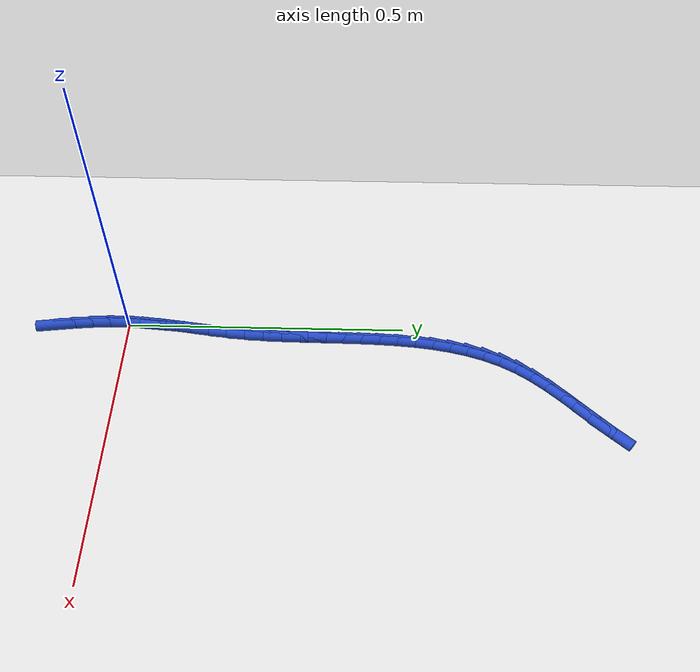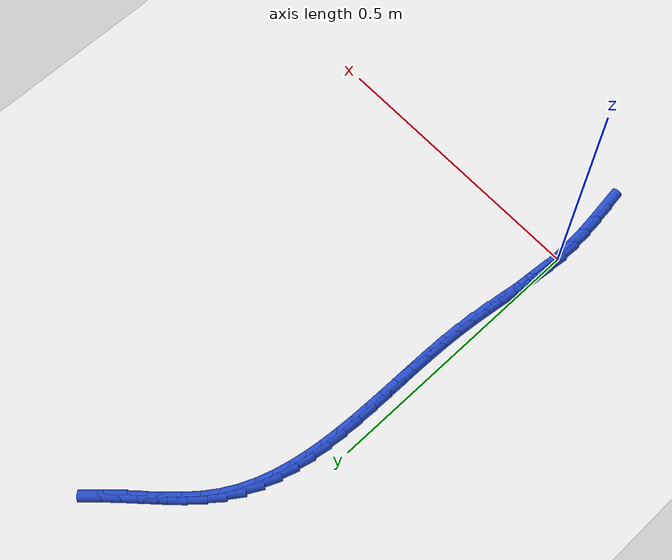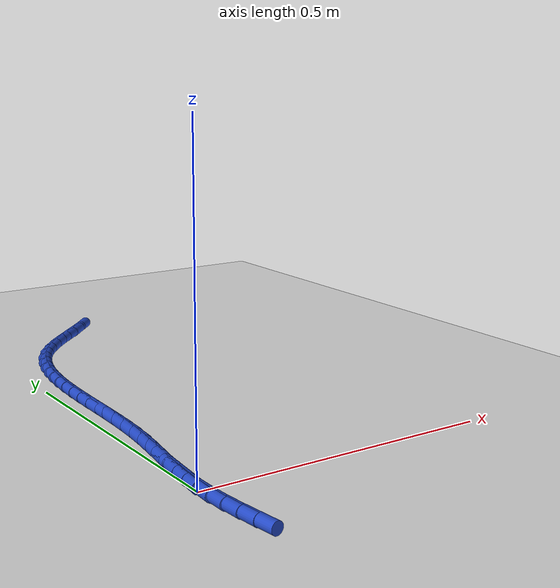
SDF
<sdf version="1.6">
 <world name="default">
  <model name="ground_plane">
   <static>1</static>
   <link name="link">
    <collision name="collision">
     <geometry><plane><normal>0 0 1</normal><size>100 100</size></plane></geometry>
     <surface><friction><ode><mu>100</mu><mu2>50</mu2></ode></friction></surface>
    </collision>
    <visual name="visual">
     <cast_shadows>0</cast_shadows>
     <geometry><plane><normal>0 0 1</normal><size>100 100</size></plane></geometry>
     <material>
      <script><uri>file://media/materials/scripts/gazebo.material</uri><name>Gazebo/WhiteGlow</name></script>
     </material>
    </visual>
   </link>
  </model>
  <model name="line">
   <link name="link_0">
    <pose>6.071532165918825e-18 2.0816681711721685e-17 0.01 0 1.57 1.5228413119064752</pose>
    <collision name="collision">
     <geometry><cylinder><radius>0.01</radius><length>0.08</length></cylinder></geometry>
    </collision>
    <visual name="visual">
     <material>
      <script><name>Gazebo/Blue</name><uri>file://media/materials/scripts/gazebo.material</uri></script>
     </material>
     <geometry><cylinder><radius>0.01</radius><length>0.08</length></cylinder></geometry>
    </visual>
   </link>
   <link name="link_1">
    <pose>0.0014991091214428918 0.031236770333529493 0.01 0 1.57 1.479106439253478</pose>
    <collision name="collision">
     <geometry><cylinder><radius>0.01</radius><length>0.08</length></cylinder></geometry>
    </collision>
    <visual name="visual">
     <material>
      <script><name>Gazebo/Blue</name><uri>file://media/materials/scripts/gazebo.material</uri></script>
     </material>
     <geometry><cylinder><radius>0.01</radius><length>0.08</length></cylinder></geometry>
    </visual>
   </link>
   <link name="link_2">
    <pose>0.004370735368496305 0.06246785286678825 0.01 0 1.57 1.4498907104379026</pose>
    <collision name="collision">
     <geometry><cylinder><radius>0.01</radius><length>0.08</length></cylinder></geometry>
    </collision>
    <visual name="visual">
     <material>
      <script><name>Gazebo/Blue</name><uri>file://media/materials/scripts/gazebo.material</uri></script>
     </material>
     <geometry><cylinder><radius>0.01</radius><length>0.08</length></cylinder></geometry>
    </visual>
   </link>
   <link name="link_3">
    <pose>0.008175191530294404 0.09378070767584436 0.01 0 1.57 1.4351255741908735</pose>
    <collision name="collision">
     <geometry><cylinder><radius>0.01</radius><length>0.08</length></cylinder></geometry>
    </collision>
    <visual name="visual">
     <material>
      <script><name>Gazebo/Blue</name><uri>file://media/materials/scripts/gazebo.material</uri></script>
     </material>
     <geometry><cylinder><radius>0.01</radius><length>0.08</length></cylinder></geometry>
    </visual>
   </link>
   <link name="link_4">
    <pose>0.012472790395971331 0.12526279483676592 0.01 0 1.57 1.4345560407025166</pose>
    <collision name="collision">
     <geometry><cylinder><radius>0.01</radius><length>0.08</length></cylinder></geometry>
    </collision>
    <visual name="visual">
     <material>
      <script><name>Gazebo/Blue</name><uri>file://media/materials/scripts/gazebo.material</uri></script>
     </material>
     <geometry><cylinder><radius>0.01</radius><length>0.08</length></cylinder></geometry>
    </visual>
   </link>
   <link name="link_5">
    <pose>0.016823844754661234 0.15700157442562102 0.01 0 1.57 1.4478393030656875</pose>
    <collision name="collision">
     <geometry><cylinder><radius>0.01</radius><length>0.08</length></cylinder></geometry>
    </collision>
    <visual name="visual">
     <material>
      <script><name>Gazebo/Blue</name><uri>file://media/materials/scripts/gazebo.material</uri></script>
     </material>
     <geometry><cylinder><radius>0.01</radius><length>0.08</length></cylinder></geometry>
    </visual>
   </link>
   <link name="link_6">
    <pose>0.020788667395498277 0.18908450651847775 0.01 0 1.57 1.4745252321055384</pose>
    <collision name="collision">
     <geometry><cylinder><radius>0.01</radius><length>0.08</length></cylinder></geometry>
    </collision>
    <visual name="visual">
     <material>
      <script><name>Gazebo/Blue</name><uri>file://media/materials/scripts/gazebo.material</uri></script>
     </material>
     <geometry><cylinder><radius>0.01</radius><length>0.08</length></cylinder></geometry>
    </visual>
   </link>
   <link name="link_7">
    <pose>0.023928555919146176 0.2215987543637677 0.01 0 1.57 1.5078525602732806</pose>
    <collision name="collision">
     <geometry><cylinder><radius>0.01</radius><length>0.08</length></cylinder></geometry>
    </collision>
    <visual name="visual">
     <material>
      <script><name>Gazebo/Blue</name><uri>file://media/materials/scripts/gazebo.material</uri></script>
     </material>
     <geometry><cylinder><radius>0.01</radius><length>0.08</length></cylinder></geometry>
    </visual>
   </link>
   <link name="link_8">
    <pose>0.026006675584604254 0.2545706371822961 0.01 0 1.57 1.5340025860333557</pose>
    <collision name="collision">
     <geometry><cylinder><radius>0.01</radius><length>0.08</length></cylinder></geometry>
    </collision>
    <visual name="visual">
     <material>
      <script><name>Gazebo/Blue</name><uri>file://media/materials/scripts/gazebo.material</uri></script>
     </material>
     <geometry><cylinder><radius>0.01</radius><length>0.08</length></cylinder></geometry>
    </visual>
   </link>
   <link name="link_9">
    <pose>0.0272332368678649 0.2878917322963527 0.01 0 1.57 1.5515645675860368</pose>
    <collision name="collision">
     <geometry><cylinder><radius>0.01</radius><length>0.08</length></cylinder></geometry>
    </collision>
    <visual name="visual">
     <material>
      <script><name>Gazebo/Blue</name><uri>file://media/materials/scripts/gazebo.material</uri></script>
     </material>
     <geometry><cylinder><radius>0.01</radius><length>0.08</length></cylinder></geometry>
    </visual>
   </link>
   <link name="link_10">
    <pose>0.027878422863744184 0.32143554094953986 0.01 0 1.57 1.5608681877677697</pose>
    <collision name="collision">
     <geometry><cylinder><radius>0.01</radius><length>0.08</length></cylinder></geometry>
    </collision>
    <visual name="visual">
     <material>
      <script><name>Gazebo/Blue</name><uri>file://media/materials/scripts/gazebo.material</uri></script>
     </material>
     <geometry><cylinder><radius>0.01</radius><length>0.08</length></cylinder></geometry>
    </visual>
   </link>
   <link name="link_11">
    <pose>0.028212416667058145 0.35507556438546006 0.01 0 1.57 1.562079291517804</pose>
    <collision name="collision">
     <geometry><cylinder><radius>0.01</radius><length>0.08</length></cylinder></geometry>
    </collision>
    <visual name="visual">
     <material>
      <script><name>Gazebo/Blue</name><uri>file://media/materials/scripts/gazebo.material</uri></script>
     </material>
     <geometry><cylinder><radius>0.01</radius><length>0.08</length></cylinder></geometry>
    </visual>
   </link>
   <link name="link_12">
    <pose>0.02850540137262282 0.38868530384771566 0.01 0 1.57 1.555188848269538</pose>
    <collision name="collision">
     <geometry><cylinder><radius>0.01</radius><length>0.08</length></cylinder></geometry>
    </collision>
    <visual name="visual">
     <material>
      <script><name>Gazebo/Blue</name><uri>file://media/materials/scripts/gazebo.material</uri></script>
     </material>
     <geometry><cylinder><radius>0.01</radius><length>0.08</length></cylinder></geometry>
    </visual>
   </link>
   <link name="link_13">
    <pose>0.029027560075254276 0.42213826057990905 0.01 0 1.57 1.5400093798811614</pose>
    <collision name="collision">
     <geometry><cylinder><radius>0.01</radius><length>0.08</length></cylinder></geometry>
    </collision>
    <visual name="visual">
     <material>
      <script><name>Gazebo/Blue</name><uri>file://media/materials/scripts/gazebo.material</uri></script>
     </material>
     <geometry><cylinder><radius>0.01</radius><length>0.08</length></cylinder></geometry>
    </visual>
   </link>
   <link name="link_14">
    <pose>0.030049075869768536 0.45530793582564244 0.01 0 1.57 1.516178488262326</pose>
    <collision name="collision">
     <geometry><cylinder><radius>0.01</radius><length>0.08</length></cylinder></geometry>
    </collision>
    <visual name="visual">
     <material>
      <script><name>Gazebo/Blue</name><uri>file://media/materials/scripts/gazebo.material</uri></script>
     </material>
     <geometry><cylinder><radius>0.01</radius><length>0.08</length></cylinder></geometry>
    </visual>
   </link>
   <link name="link_15">
    <pose>0.03184013185098166 0.48806783082851846 0.01 0 1.57 1.4831732978650962</pose>
    <collision name="collision">
     <geometry><cylinder><radius>0.01</radius><length>0.08</length></cylinder></geometry>
    </collision>
    <visual name="visual">
     <material>
      <script><name>Gazebo/Blue</name><uri>file://media/materials/scripts/gazebo.material</uri></script>
     </material>
     <geometry><cylinder><radius>0.01</radius><length>0.08</length></cylinder></geometry>
    </visual>
   </link>
   <link name="link_16">
    <pose>0.03467091111370968 0.5202914468321391 0.01 0 1.57 1.4403444480942433</pose>
    <collision name="collision">
     <geometry><cylinder><radius>0.01</radius><length>0.08</length></cylinder></geometry>
    </collision>
    <visual name="visual">
     <material>
      <script><name>Gazebo/Blue</name><uri>file://media/materials/scripts/gazebo.material</uri></script>
     </material>
     <geometry><cylinder><radius>0.01</radius><length>0.08</length></cylinder></geometry>
    </visual>
   </link>
   <link name="link_17">
    <pose>0.03881159675276868 0.5518522850801075 0.01 0 1.57 1.386983747950167</pose>
    <collision name="collision">
     <geometry><cylinder><radius>0.01</radius><length>0.08</length></cylinder></geometry>
    </collision>
    <visual name="visual">
     <material>
      <script><name>Gazebo/Blue</name><uri>file://media/materials/scripts/gazebo.material</uri></script>
     </material>
     <geometry><cylinder><radius>0.01</radius><length>0.08</length></cylinder></geometry>
    </visual>
   </link>
   <link name="link_18">
    <pose>0.04453237186297462 0.5826238468160249 0.01 0 1.57 1.3224442605211304</pose>
    <collision name="collision">
     <geometry><cylinder><radius>0.01</radius><length>0.08</length></cylinder></geometry>
    </collision>
    <visual name="visual">
     <material>
      <script><name>Gazebo/Blue</name><uri>file://media/materials/scripts/gazebo.material</uri></script>
     </material>
     <geometry><cylinder><radius>0.01</radius><length>0.08</length></cylinder></geometry>
    </visual>
   </link>
   <link name="link_19">
    <pose>0.05210341953914363 0.6124796332834946 0.01 0 1.57 1.2463307886620099</pose>
    <collision name="collision">
     <geometry><cylinder><radius>0.01</radius><length>0.08</length></cylinder></geometry>
    </collision>
    <visual name="visual">
     <material>
      <script><name>Gazebo/Blue</name><uri>file://media/materials/scripts/gazebo.material</uri></script>
     </material>
     <geometry><cylinder><radius>0.01</radius><length>0.08</length></cylinder></geometry>
    </visual>
   </link>
   <link name="link_20">
    <pose>0.06179492287609177 0.6412931457261188 0.01 0 1.57 1.1587633906094261</pose>
    <collision name="collision">
     <geometry><cylinder><radius>0.01</radius><length>0.08</length></cylinder></geometry>
    </collision>
    <visual name="visual">
     <material>
      <script><name>Gazebo/Blue</name><uri>file://media/materials/scripts/gazebo.material</uri></script>
     </material>
     <geometry><cylinder><radius>0.01</radius><length>0.08</length></cylinder></geometry>
    </visual>
   </link>
   <link name="link_21">
    <pose>0.07387706496863501 0.6689378853874994 0.01 0 1.57 1.0606761023043398</pose>
    <collision name="collision">
     <geometry><cylinder><radius>0.01</radius><length>0.08</length></cylinder></geometry>
    </collision>
    <visual name="visual">
     <material>
      <script><name>Gazebo/Blue</name><uri>file://media/materials/scripts/gazebo.material</uri></script>
     </material>
     <geometry><cylinder><radius>0.01</radius><length>0.08</length></cylinder></geometry>
    </visual>
   </link>
   <link name="link_22">
    <pose>0.08862002891158942 0.6952873535112394 0.01 0 1.57 0.9564874920206814</pose>
    <collision name="collision">
     <geometry><cylinder><radius>0.01</radius><length>0.08</length></cylinder></geometry>
    </collision>
    <visual name="visual">
     <material>
      <script><name>Gazebo/Blue</name><uri>file://media/materials/scripts/gazebo.material</uri></script>
     </material>
     <geometry><cylinder><radius>0.01</radius><length>0.08</length></cylinder></geometry>
    </visual>
   </link>
   <link name="link_23">
    <pose>0.10622759375755328 0.7202501618423135 0.01 0 1.57 0.8697075107137532</pose>
    <collision name="collision">
     <geometry><cylinder><radius>0.01</radius><length>0.08</length></cylinder></geometry>
    </collision>
    <visual name="visual">
     <material>
      <script><name>Gazebo/Blue</name><uri>file://media/materials/scripts/gazebo.material</uri></script>
     </material>
     <geometry><cylinder><radius>0.01</radius><length>0.08</length></cylinder></geometry>
    </visual>
   </link>
   <link name="link_24">
    <pose>0.12631498115132753 0.7440461162184676 0.01 0 1.57 0.810716877164615</pose>
    <collision name="collision">
     <geometry><cylinder><radius>0.01</radius><length>0.08</length></cylinder></geometry>
    </collision>
    <visual name="visual">
     <material>
      <script><name>Gazebo/Blue</name><uri>file://media/materials/scripts/gazebo.material</uri></script>
     </material>
     <geometry><cylinder><radius>0.01</radius><length>0.08</length></cylinder></geometry>
    </visual>
   </link>
   <link name="link_25">
    <pose>0.14818981725444022 0.7670576606433932 0.01 0 1.57 0.7775824461752667</pose>
    <collision name="collision">
     <geometry><cylinder><radius>0.01</radius><length>0.08</length></cylinder></geometry>
    </collision>
    <visual name="visual">
     <material>
      <script><name>Gazebo/Blue</name><uri>file://media/materials/scripts/gazebo.material</uri></script>
     </material>
     <geometry><cylinder><radius>0.01</radius><length>0.08</length></cylinder></geometry>
    </visual>
   </link>
   <link name="link_26">
    <pose>0.17115704712089375 0.7896686567307086 0.01 0 1.57 0.7686399820368625</pose>
    <collision name="collision">
     <geometry><cylinder><radius>0.01</radius><length>0.08</length></cylinder></geometry>
    </collision>
    <visual name="visual">
     <material>
      <script><name>Gazebo/Blue</name><uri>file://media/materials/scripts/gazebo.material</uri></script>
     </material>
     <geometry><cylinder><radius>0.01</radius><length>0.08</length></cylinder></geometry>
    </visual>
   </link>
   <link name="link_27">
    <pose>0.19452161580469068 0.8122629660940324 0.01 0 1.57 0.783108962321759</pose>
    <collision name="collision">
     <geometry><cylinder><radius>0.01</radius><length>0.08</length></cylinder></geometry>
    </collision>
    <visual name="visual">
     <material>
      <script><name>Gazebo/Blue</name><uri>file://media/materials/scripts/gazebo.material</uri></script>
     </material>
     <geometry><cylinder><radius>0.01</radius><length>0.08</length></cylinder></geometry>
    </visual>
   </link>
   <link name="link_28">
    <pose>0.2175884683598337 0.8352244503469832 0.01 0 1.57 0.8145725686481282</pose>
    <collision name="collision">
     <geometry><cylinder><radius>0.01</radius><length>0.08</length></cylinder></geometry>
    </collision>
    <visual name="visual">
     <material>
      <script><name>Gazebo/Blue</name><uri>file://media/materials/scripts/gazebo.material</uri></script>
     </material>
     <geometry><cylinder><radius>0.01</radius><length>0.08</length></cylinder></geometry>
    </visual>
   </link>
   <link name="link_286">
    <pose>0.00898832704388122 -0.12587613146365395 0.01 0 1.57 -1.4439900153244578</pose>
    <collision name="collision">
     <geometry><cylinder><radius>0.01</radius><length>0.08</length></cylinder></geometry>
    </collision>
    <visual name="visual">
     <material>
      <script><name>Gazebo/Blue</name><uri>file://media/materials/scripts/gazebo.material</uri></script>
     </material>
     <geometry><cylinder><radius>0.01</radius><length>0.08</length></cylinder></geometry>
    </visual>
   </link>
   <link name="link_287">
    <pose>0.004956177146715259 -0.09424904178707517 0.01 0 1.57 -1.4752746513289765</pose>
    <collision name="collision">
     <geometry><cylinder><radius>0.01</radius><length>0.08</length></cylinder></geometry>
    </collision>
    <visual name="visual">
     <material>
      <script><name>Gazebo/Blue</name><uri>file://media/materials/scripts/gazebo.material</uri></script>
     </material>
     <geometry><cylinder><radius>0.01</radius><length>0.08</length></cylinder></geometry>
    </visual>
   </link>
   <link name="link_288">
    <pose>0.0019363129844380319 -0.06273081569782694 0.01 0 1.57 -1.5154348111004174</pose>
    <collision name="collision">
     <geometry><cylinder><radius>0.01</radius><length>0.08</length></cylinder></geometry>
    </collision>
    <visual name="visual">
     <material>
      <script><name>Gazebo/Blue</name><uri>file://media/materials/scripts/gazebo.material</uri></script>
     </material>
     <geometry><cylinder><radius>0.01</radius><length>0.08</length></cylinder></geometry>
    </visual>
   </link>
   <link name="link_289">
    <pose>0.00019537409091209676 -0.03131621462557878 0.01 0 1.57 -1.5645576559171372</pose>
    <collision name="collision">
     <geometry><cylinder><radius>0.01</radius><length>0.08</length></cylinder></geometry>
    </collision>
    <visual name="visual">
     <material>
      <script><name>Gazebo/Blue</name><uri>file://media/materials/scripts/gazebo.material</uri></script>
     </material>
     <geometry><cylinder><radius>0.01</radius><length>0.08</length></cylinder></geometry>
    </visual>
   </link>
   <link name="link_290">
    <pose>-3.469446951953614e-18 6.938893903907228e-18 0.01 0 1.57 1.5190593400763304</pose>
    <collision name="collision">
     <geometry><cylinder><radius>0.01</radius><length>0.08</length></cylinder></geometry>
    </collision>
    <visual name="visual">
     <material>
      <script><name>Gazebo/Blue</name><uri>file://media/materials/scripts/gazebo.material</uri></script>
     </material>
     <geometry><cylinder><radius>0.01</radius><length>0.08</length></cylinder></geometry>
    </visual>
   </link>
   <link name="link_291">
    <pose>0.001616830245564197 0.031223066749238946 0.01 0 1.57 1.4526513305829267</pose>
    <collision name="collision">
     <geometry><cylinder><radius>0.01</radius><length>0.08</length></cylinder></geometry>
    </collision>
    <visual name="visual">
     <material>
      <script><name>Gazebo/Blue</name><uri>file://media/materials/scripts/gazebo.material</uri></script>
     </material>
     <geometry><cylinder><radius>0.01</radius><length>0.08</length></cylinder></geometry>
    </visual>
   </link>
   <link name="link_292">
    <pose>0.005312504361467506 0.062358224192471653 0.01 0 1.57 1.4858082187288009</pose>
    <collision name="collision">
     <geometry><cylinder><radius>0.01</radius><length>0.08</length></cylinder></geometry>
    </collision>
    <visual name="visual">
     <material>
      <script><name>Gazebo/Blue</name><uri>file://media/materials/scripts/gazebo.material</uri></script>
     </material>
     <geometry><cylinder><radius>0.01</radius><length>0.08</length></cylinder></geometry>
    </visual>
   </link>
  </model>
 </world>
</sdf>
